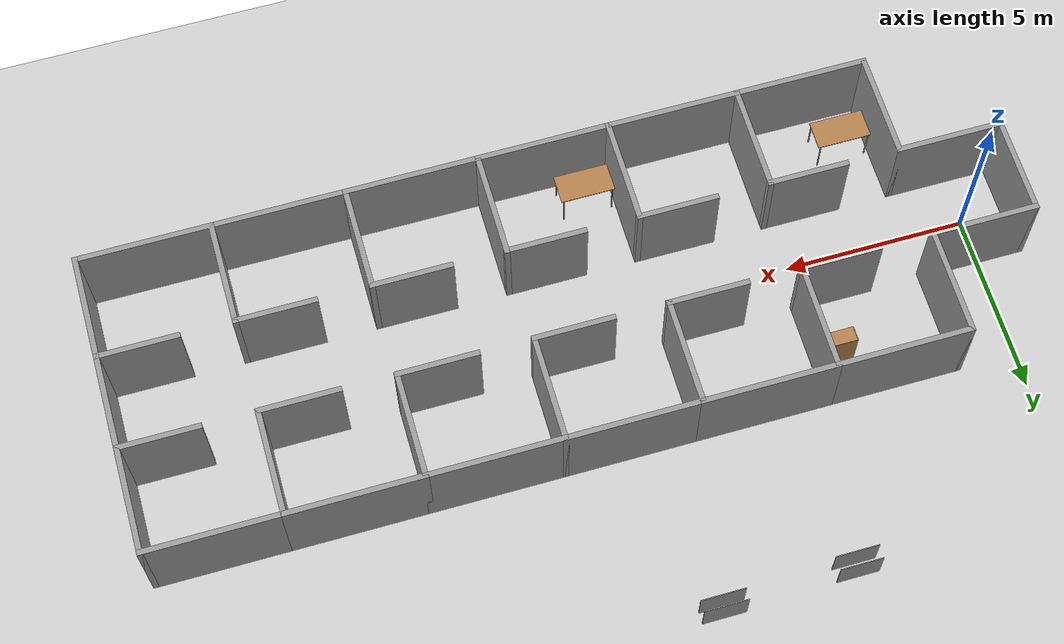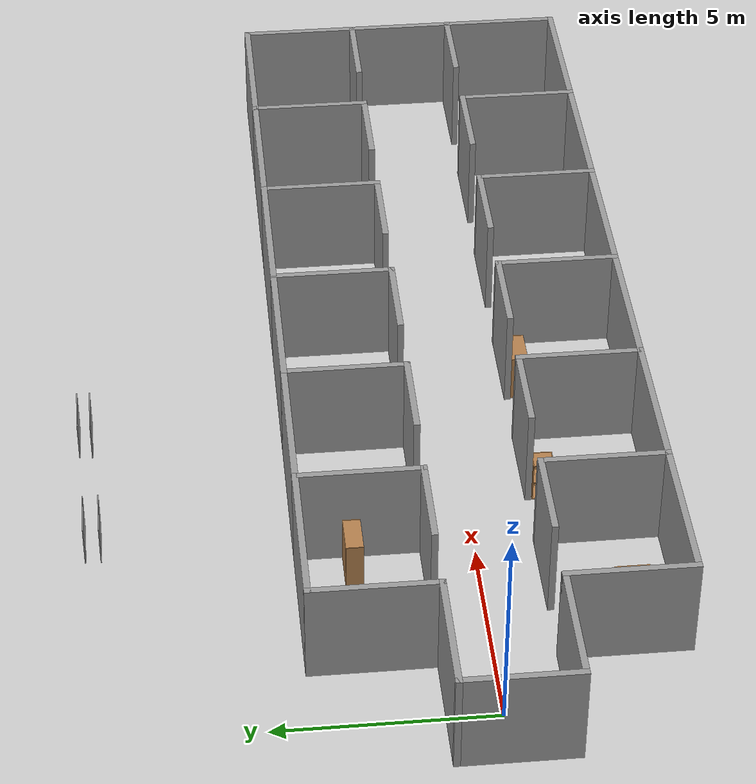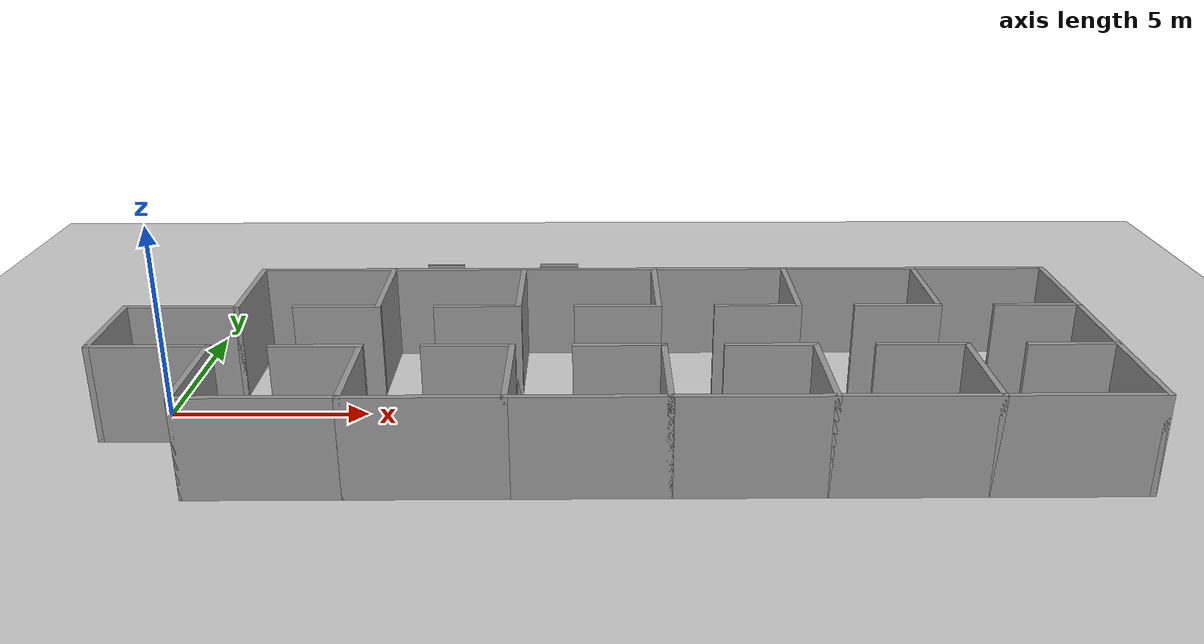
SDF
<sdf version="1.7">
 <world name="default">
  <model name="ground_plane">
   <static>1</static>
   <link name="link">
    <collision name="collision">
     <geometry><plane><normal>0 0 1</normal><size>100 100</size></plane></geometry>
     <surface><friction><ode><mu>100</mu><mu2>50</mu2></ode></friction></surface>
    </collision>
    <visual name="visual">
     <cast_shadows>0</cast_shadows>
     <geometry><plane><normal>0 0 1</normal><size>100 100</size></plane></geometry>
     <material>
      <script><uri>file://media/materials/scripts/gazebo.material</uri><name>Gazebo/Grey</name></script>
     </material>
    </visual>
   </link>
  </model>
  <model name="indoors_hotal">
   <pose>10.9758 -0.129699 0 0 -0 0</pose>
   <link name="Wall_0">
    <collision name="Wall_0_Collision">
     <geometry><box><size>2.75 0.15 2.5</size></box></geometry>
     <pose>0 0 1.25 0 -0 0</pose>
    </collision>
    <visual name="Wall_0_Visual">
     <pose>0 0 1.25 0 -0 0</pose>
     <geometry><box><size>2.75 0.15 2.5</size></box></geometry>
     <material>
      <script><uri>file://media/materials/scripts/gazebo.material</uri><name>Gazebo/Grey</name></script>
      <ambient>1 1 1 1</ambient>
     </material>
     <meta><layer>0</layer></meta>
    </visual>
    <pose>-12.225 -0 0 0 -0 -1.5708</pose>
   </link>
   <link name="Wall_10">
    <collision name="Wall_10_Collision">
     <geometry><box><size>3 0.15 2.5</size></box></geometry>
     <pose>0 0 1.25 0 -0 0</pose>
    </collision>
    <visual name="Wall_10_Visual">
     <pose>0 0 1.25 0 -0 0</pose>
     <geometry><box><size>3 0.15 2.5</size></box></geometry>
     <material>
      <script><uri>file://media/materials/scripts/gazebo.material</uri><name>Gazebo/Grey</name></script>
      <ambient>1 1 1 1</ambient>
     </material>
     <meta><layer>0</layer></meta>
    </visual>
    <pose>-9.375 2.725 0 0 -0 1.5708</pose>
   </link>
   <link name="Wall_11">
    <collision name="Wall_11_Collision">
     <geometry><box><size>3.75 0.15 2.5</size></box></geometry>
     <pose>0 0 1.25 0 -0 0</pose>
    </collision>
    <visual name="Wall_11_Visual">
     <pose>0 0 1.25 0 -0 0</pose>
     <geometry><box><size>3.75 0.15 2.5</size></box></geometry>
     <material>
      <script><uri>file://media/materials/scripts/gazebo.material</uri><name>Gazebo/Grey</name></script>
      <ambient>1 1 1 1</ambient>
     </material>
     <meta><layer>0</layer></meta>
    </visual>
    <pose>-7.575 4.15 0 0 -0 0</pose>
   </link>
   <link name="Wall_12">
    <collision name="Wall_12_Collision">
     <geometry><box><size>3 0.15 2.5</size></box></geometry>
     <pose>0 0 1.25 0 -0 0</pose>
    </collision>
    <visual name="Wall_12_Visual">
     <pose>0 0 1.25 0 -0 0</pose>
     <geometry><box><size>3 0.15 2.5</size></box></geometry>
     <material>
      <script><uri>file://media/materials/scripts/gazebo.material</uri><name>Gazebo/Grey</name></script>
      <ambient>1 1 1 1</ambient>
     </material>
     <meta><layer>0</layer></meta>
    </visual>
    <pose>-5.775 2.725 0 0 -0 -1.5708</pose>
   </link>
   <link name="Wall_13">
    <collision name="Wall_13_Collision">
     <geometry><box><size>2.25 0.15 2.5</size></box></geometry>
     <pose>0 0 1.25 0 -0 0</pose>
    </collision>
    <visual name="Wall_13_Visual">
     <pose>0 0 1.25 0 -0 0</pose>
     <geometry><box><size>2.25 0.15 2.5</size></box></geometry>
     <material>
      <script><uri>file://media/materials/scripts/gazebo.material</uri><name>Gazebo/Grey</name></script>
      <ambient>1 1 1 1</ambient>
     </material>
     <meta><layer>0</layer></meta>
    </visual>
    <pose>-6.825 1.3 0 0 -0 3.14159</pose>
   </link>
   <link name="Wall_15">
    <collision name="Wall_15_Collision">
     <geometry><box><size>3.75 0.15 2.5</size></box></geometry>
     <pose>0 0 1.25 0 -0 0</pose>
    </collision>
    <visual name="Wall_15_Visual">
     <pose>0 0 1.25 0 -0 0</pose>
     <geometry><box><size>3.75 0.15 2.5</size></box></geometry>
     <material>
      <script><uri>file://media/materials/scripts/gazebo.material</uri><name>Gazebo/Grey</name></script>
      <ambient>1 1 1 1</ambient>
     </material>
     <meta><layer>0</layer></meta>
    </visual>
    <pose>-3.975 4.15 0 0 -0 0</pose>
   </link>
   <link name="Wall_16">
    <collision name="Wall_16_Collision">
     <geometry><box><size>3 0.15 2.5</size></box></geometry>
     <pose>0 0 1.25 0 -0 0</pose>
    </collision>
    <visual name="Wall_16_Visual">
     <pose>0 0 1.25 0 -0 0</pose>
     <geometry><box><size>3 0.15 2.5</size></box></geometry>
     <material>
      <script><uri>file://media/materials/scripts/gazebo.material</uri><name>Gazebo/Grey</name></script>
      <ambient>1 1 1 1</ambient>
     </material>
     <meta><layer>0</layer></meta>
    </visual>
    <pose>-2.175 2.725 0 0 -0 -1.5708</pose>
   </link>
   <link name="Wall_17">
    <collision name="Wall_17_Collision">
     <geometry><box><size>2.25 0.15 2.5</size></box></geometry>
     <pose>0 0 1.25 0 -0 0</pose>
    </collision>
    <visual name="Wall_17_Visual">
     <pose>0 0 1.25 0 -0 0</pose>
     <geometry><box><size>2.25 0.15 2.5</size></box></geometry>
     <material>
      <script><uri>file://media/materials/scripts/gazebo.material</uri><name>Gazebo/Grey</name></script>
      <ambient>1 1 1 1</ambient>
     </material>
     <meta><layer>0</layer></meta>
    </visual>
    <pose>-3.225 1.3 0 0 -0 3.14159</pose>
   </link>
   <link name="Wall_19">
    <collision name="Wall_19_Collision">
     <geometry><box><size>3.75 0.15 2.5</size></box></geometry>
     <pose>0 0 1.25 0 -0 0</pose>
    </collision>
    <visual name="Wall_19_Visual">
     <pose>0 0 1.25 0 -0 0</pose>
     <geometry><box><size>3.75 0.15 2.5</size></box></geometry>
     <material>
      <script><uri>file://media/materials/scripts/gazebo.material</uri><name>Gazebo/Grey</name></script>
      <ambient>1 1 1 1</ambient>
     </material>
     <meta><layer>0</layer></meta>
    </visual>
    <pose>-3.975 -4.15 0 0 -0 0</pose>
   </link>
   <link name="Wall_2">
    <collision name="Wall_2_Collision">
     <geometry><box><size>3 0.15 2.5</size></box></geometry>
     <pose>0 0 1.25 0 -0 0</pose>
    </collision>
    <visual name="Wall_2_Visual">
     <pose>0 0 1.25 0 -0 0</pose>
     <geometry><box><size>3 0.15 2.5</size></box></geometry>
     <material>
      <script><uri>file://media/materials/scripts/gazebo.material</uri><name>Gazebo/Grey</name></script>
      <ambient>1 1 1 1</ambient>
     </material>
     <meta><layer>0</layer></meta>
    </visual>
    <pose>-10.8 -1.3 0 0 -0 0</pose>
   </link>
   <link name="Wall_20">
    <collision name="Wall_20_Collision">
     <geometry><box><size>3 0.15 2.5</size></box></geometry>
     <pose>0 0 1.25 0 -0 0</pose>
    </collision>
    <visual name="Wall_20_Visual">
     <pose>0 0 1.25 0 -0 0</pose>
     <geometry><box><size>3 0.15 2.5</size></box></geometry>
     <material>
      <script><uri>file://media/materials/scripts/gazebo.material</uri><name>Gazebo/Grey</name></script>
      <ambient>1 1 1 1</ambient>
     </material>
     <meta><layer>0</layer></meta>
    </visual>
    <pose>-2.175 -2.725 0 0 -0 1.5708</pose>
   </link>
   <link name="Wall_21">
    <collision name="Wall_21_Collision">
     <geometry><box><size>2.25 0.15 2.5</size></box></geometry>
     <pose>0 0 1.25 0 -0 0</pose>
    </collision>
    <visual name="Wall_21_Visual">
     <pose>0 0 1.25 0 -0 0</pose>
     <geometry><box><size>2.25 0.15 2.5</size></box></geometry>
     <material>
      <script><uri>file://media/materials/scripts/gazebo.material</uri><name>Gazebo/Grey</name></script>
      <ambient>1 1 1 1</ambient>
     </material>
     <meta><layer>0</layer></meta>
    </visual>
    <pose>-3.225 -1.3 0 0 -0 3.14159</pose>
   </link>
   <link name="Wall_23">
    <collision name="Wall_23_Collision">
     <geometry><box><size>3.75 0.15 2.5</size></box></geometry>
     <pose>0 0 1.25 0 -0 0</pose>
    </collision>
    <visual name="Wall_23_Visual">
     <pose>0 0 1.25 0 -0 0</pose>
     <geometry><box><size>3.75 0.15 2.5</size></box></geometry>
     <material>
      <script><uri>file://media/materials/scripts/gazebo.material</uri><name>Gazebo/Grey</name></script>
      <ambient>1 1 1 1</ambient>
     </material>
     <meta><layer>0</layer></meta>
    </visual>
    <pose>-0.375 4.15 0 0 -0 0</pose>
   </link>
   <link name="Wall_24">
    <collision name="Wall_24_Collision">
     <geometry><box><size>3 0.15 2.5</size></box></geometry>
     <pose>0 0 1.25 0 -0 0</pose>
    </collision>
    <visual name="Wall_24_Visual">
     <pose>0 0 1.25 0 -0 0</pose>
     <geometry><box><size>3 0.15 2.5</size></box></geometry>
     <material>
      <script><uri>file://media/materials/scripts/gazebo.material</uri><name>Gazebo/Grey</name></script>
      <ambient>1 1 1 1</ambient>
     </material>
     <meta><layer>0</layer></meta>
    </visual>
    <pose>1.425 2.725 0 0 -0 -1.5708</pose>
   </link>
   <link name="Wall_25">
    <collision name="Wall_25_Collision">
     <geometry><box><size>2.25 0.15 2.5</size></box></geometry>
     <pose>0 0 1.25 0 -0 0</pose>
    </collision>
    <visual name="Wall_25_Visual">
     <pose>0 0 1.25 0 -0 0</pose>
     <geometry><box><size>2.25 0.15 2.5</size></box></geometry>
     <material>
      <script><uri>file://media/materials/scripts/gazebo.material</uri><name>Gazebo/Grey</name></script>
      <ambient>1 1 1 1</ambient>
     </material>
     <meta><layer>0</layer></meta>
    </visual>
    <pose>0.375 1.3 0 0 -0 3.14159</pose>
   </link>
   <link name="Wall_27">
    <collision name="Wall_27_Collision">
     <geometry><box><size>3.75 0.15 2.5</size></box></geometry>
     <pose>0 0 1.25 0 -0 0</pose>
    </collision>
    <visual name="Wall_27_Visual">
     <pose>0 0 1.25 0 -0 0</pose>
     <geometry><box><size>3.75 0.15 2.5</size></box></geometry>
     <material>
      <script><uri>file://media/materials/scripts/gazebo.material</uri><name>Gazebo/Grey</name></script>
      <ambient>1 1 1 1</ambient>
     </material>
     <meta><layer>0</layer></meta>
    </visual>
    <pose>-0.375 -4.15 0 0 -0 0</pose>
   </link>
   <link name="Wall_28">
    <collision name="Wall_28_Collision">
     <geometry><box><size>3 0.15 2.5</size></box></geometry>
     <pose>0 0 1.25 0 -0 0</pose>
    </collision>
    <visual name="Wall_28_Visual">
     <pose>0 0 1.25 0 -0 0</pose>
     <geometry><box><size>3 0.15 2.5</size></box></geometry>
     <material>
      <script><uri>file://media/materials/scripts/gazebo.material</uri><name>Gazebo/Grey</name></script>
      <ambient>1 1 1 1</ambient>
     </material>
     <meta><layer>0</layer></meta>
    </visual>
    <pose>1.425 -2.725 0 0 -0 1.5708</pose>
   </link>
   <link name="Wall_29">
    <collision name="Wall_29_Collision">
     <geometry><box><size>2.25 0.15 2.5</size></box></geometry>
     <pose>0 0 1.25 0 -0 0</pose>
    </collision>
    <visual name="Wall_29_Visual">
     <pose>0 0 1.25 0 -0 0</pose>
     <geometry><box><size>2.25 0.15 2.5</size></box></geometry>
     <material>
      <script><uri>file://media/materials/scripts/gazebo.material</uri><name>Gazebo/Grey</name></script>
      <ambient>1 1 1 1</ambient>
     </material>
     <meta><layer>0</layer></meta>
    </visual>
    <pose>0.375 -1.3 0 0 -0 3.14159</pose>
   </link>
   <link name="Wall_31">
    <collision name="Wall_31_Collision">
     <geometry><box><size>3.75 0.15 2.5</size></box></geometry>
     <pose>0 0 1.25 0 -0 0</pose>
    </collision>
    <visual name="Wall_31_Visual">
     <pose>0 0 1.25 0 -0 0</pose>
     <geometry><box><size>3.75 0.15 2.5</size></box></geometry>
     <material>
      <script><uri>file://media/materials/scripts/gazebo.material</uri><name>Gazebo/Grey</name></script>
      <ambient>1 1 1 1</ambient>
     </material>
     <meta><layer>0</layer></meta>
    </visual>
    <pose>3.225 4.15 0 0 -0 0</pose>
   </link>
   <link name="Wall_32">
    <collision name="Wall_32_Collision">
     <geometry><box><size>3 0.15 2.5</size></box></geometry>
     <pose>0 0 1.25 0 -0 0</pose>
    </collision>
    <visual name="Wall_32_Visual">
     <pose>0 0 1.25 0 -0 0</pose>
     <geometry><box><size>3 0.15 2.5</size></box></geometry>
     <material>
      <script><uri>file://media/materials/scripts/gazebo.material</uri><name>Gazebo/Grey</name></script>
      <ambient>1 1 1 1</ambient>
     </material>
     <meta><layer>0</layer></meta>
    </visual>
    <pose>5.025 2.725 0 0 -0 -1.5708</pose>
   </link>
   <link name="Wall_33">
    <collision name="Wall_33_Collision">
     <geometry><box><size>2.25 0.15 2.5</size></box></geometry>
     <pose>0 0 1.25 0 -0 0</pose>
    </collision>
    <visual name="Wall_33_Visual">
     <pose>0 0 1.25 0 -0 0</pose>
     <geometry><box><size>2.25 0.15 2.5</size></box></geometry>
     <material>
      <script><uri>file://media/materials/scripts/gazebo.material</uri><name>Gazebo/Grey</name></script>
      <ambient>1 1 1 1</ambient>
     </material>
     <meta><layer>0</layer></meta>
    </visual>
    <pose>3.975 1.3 0 0 -0 3.14159</pose>
   </link>
   <link name="Wall_35">
    <collision name="Wall_35_Collision">
     <geometry><box><size>3.75 0.15 2.5</size></box></geometry>
     <pose>0 0 1.25 0 -0 0</pose>
    </collision>
    <visual name="Wall_35_Visual">
     <pose>0 0 1.25 0 -0 0</pose>
     <geometry><box><size>3.75 0.15 2.5</size></box></geometry>
     <material>
      <script><uri>file://media/materials/scripts/gazebo.material</uri><name>Gazebo/Grey</name></script>
      <ambient>1 1 1 1</ambient>
     </material>
     <meta><layer>0</layer></meta>
    </visual>
    <pose>6.825 4.15 0 0 -0 0</pose>
   </link>
   <link name="Wall_36">
    <collision name="Wall_36_Collision">
     <geometry><box><size>3 0.15 2.5</size></box></geometry>
     <pose>0 0 1.25 0 -0 0</pose>
    </collision>
    <visual name="Wall_36_Visual">
     <pose>0 0 1.25 0 -0 0</pose>
     <geometry><box><size>3 0.15 2.5</size></box></geometry>
     <material>
      <script><uri>file://media/materials/scripts/gazebo.material</uri><name>Gazebo/Grey</name></script>
      <ambient>1 1 1 1</ambient>
     </material>
     <meta><layer>0</layer></meta>
    </visual>
    <pose>8.625 2.725 0 0 -0 -1.5708</pose>
   </link>
   <link name="Wall_37">
    <collision name="Wall_37_Collision">
     <geometry><box><size>2.25 0.15 2.5</size></box></geometry>
     <pose>0 0 1.25 0 -0 0</pose>
    </collision>
    <visual name="Wall_37_Visual">
     <pose>0 0 1.25 0 -0 0</pose>
     <geometry><box><size>2.25 0.15 2.5</size></box></geometry>
     <material>
      <script><uri>file://media/materials/scripts/gazebo.material</uri><name>Gazebo/Grey</name></script>
      <ambient>1 1 1 1</ambient>
     </material>
     <meta><layer>0</layer></meta>
    </visual>
    <pose>7.575 1.3 0 0 -0 3.14159</pose>
   </link>
   <link name="Wall_39">
    <collision name="Wall_39_Collision">
     <geometry><box><size>3.75 0.15 2.5</size></box></geometry>
     <pose>0 0 1.25 0 -0 0</pose>
    </collision>
    <visual name="Wall_39_Visual">
     <pose>0 0 1.25 0 -0 0</pose>
     <geometry><box><size>3.75 0.15 2.5</size></box></geometry>
     <material>
      <script><uri>file://media/materials/scripts/gazebo.material</uri><name>Gazebo/Grey</name></script>
      <ambient>1 1 1 1</ambient>
     </material>
     <meta><layer>0</layer></meta>
    </visual>
    <pose>10.425 4.15 0 0 -0 0</pose>
   </link>
   <link name="Wall_4">
    <collision name="Wall_4_Collision">
     <geometry><box><size>3 0.15 2.5</size></box></geometry>
     <pose>0 0 1.25 0 -0 0</pose>
    </collision>
    <visual name="Wall_4_Visual">
     <pose>0 0 1.25 0 -0 0</pose>
     <geometry><box><size>3 0.15 2.5</size></box></geometry>
     <material>
      <script><uri>file://media/materials/scripts/gazebo.material</uri><name>Gazebo/Grey</name></script>
      <ambient>1 1 1 1</ambient>
     </material>
     <meta><layer>0</layer></meta>
    </visual>
    <pose>-9.375 -2.725 0 0 -0 -1.5708</pose>
   </link>
   <link name="Wall_40">
    <collision name="Wall_40_Collision">
     <geometry><box><size>3 0.15 2.5</size></box></geometry>
     <pose>0 0 1.25 0 -0 0</pose>
    </collision>
    <visual name="Wall_40_Visual">
     <pose>0 0 1.25 0 -0 0</pose>
     <geometry><box><size>3 0.15 2.5</size></box></geometry>
     <material>
      <script><uri>file://media/materials/scripts/gazebo.material</uri><name>Gazebo/Grey</name></script>
      <ambient>1 1 1 1</ambient>
     </material>
     <meta><layer>0</layer></meta>
    </visual>
    <pose>12.225 2.725 0 0 -0 -1.5708</pose>
   </link>
   <link name="Wall_41">
    <collision name="Wall_41_Collision">
     <geometry><box><size>2.25 0.15 2.5</size></box></geometry>
     <pose>0 0 1.25 0 -0 0</pose>
    </collision>
    <visual name="Wall_41_Visual">
     <pose>0 0 1.25 0 -0 0</pose>
     <geometry><box><size>2.25 0.15 2.5</size></box></geometry>
     <material>
      <script><uri>file://media/materials/scripts/gazebo.material</uri><name>Gazebo/Grey</name></script>
      <ambient>1 1 1 1</ambient>
     </material>
     <meta><layer>0</layer></meta>
    </visual>
    <pose>11.175 1.3 0 0 -0 3.14159</pose>
   </link>
   <link name="Wall_43">
    <collision name="Wall_43_Collision">
     <geometry><box><size>3.75 0.15 2.5</size></box></geometry>
     <pose>0 0 1.25 0 -0 0</pose>
    </collision>
    <visual name="Wall_43_Visual">
     <pose>0 0 1.25 0 -0 0</pose>
     <geometry><box><size>3.75 0.15 2.5</size></box></geometry>
     <material>
      <script><uri>file://media/materials/scripts/gazebo.material</uri><name>Gazebo/Grey</name></script>
      <ambient>1 1 1 1</ambient>
     </material>
     <meta><layer>0</layer></meta>
    </visual>
    <pose>3.225 -4.15 0 0 -0 0</pose>
   </link>
   <link name="Wall_44">
    <collision name="Wall_44_Collision">
     <geometry><box><size>3 0.15 2.5</size></box></geometry>
     <pose>0 0 1.25 0 -0 0</pose>
    </collision>
    <visual name="Wall_44_Visual">
     <pose>0 0 1.25 0 -0 0</pose>
     <geometry><box><size>3 0.15 2.5</size></box></geometry>
     <material>
      <script><uri>file://media/materials/scripts/gazebo.material</uri><name>Gazebo/Grey</name></script>
      <ambient>1 1 1 1</ambient>
     </material>
     <meta><layer>0</layer></meta>
    </visual>
    <pose>5.025 -2.725 0 0 -0 1.5708</pose>
   </link>
   <link name="Wall_45">
    <collision name="Wall_45_Collision">
     <geometry><box><size>2.25 0.15 2.5</size></box></geometry>
     <pose>0 0 1.25 0 -0 0</pose>
    </collision>
    <visual name="Wall_45_Visual">
     <pose>0 0 1.25 0 -0 0</pose>
     <geometry><box><size>2.25 0.15 2.5</size></box></geometry>
     <material>
      <script><uri>file://media/materials/scripts/gazebo.material</uri><name>Gazebo/Grey</name></script>
      <ambient>1 1 1 1</ambient>
     </material>
     <meta><layer>0</layer></meta>
    </visual>
    <pose>3.975 -1.3 0 0 -0 3.14159</pose>
   </link>
   <link name="Wall_47">
    <collision name="Wall_47_Collision">
     <geometry><box><size>3.75 0.15 2.5</size></box></geometry>
     <pose>0 0 1.25 0 -0 0</pose>
    </collision>
    <visual name="Wall_47_Visual">
     <pose>0 0 1.25 0 -0 0</pose>
     <geometry><box><size>3.75 0.15 2.5</size></box></geometry>
     <material>
      <script><uri>file://media/materials/scripts/gazebo.material</uri><name>Gazebo/Grey</name></script>
      <ambient>1 1 1 1</ambient>
     </material>
     <meta><layer>0</layer></meta>
    </visual>
    <pose>6.825 -4.15 0 0 -0 0</pose>
   </link>
   <link name="Wall_48">
    <collision name="Wall_48_Collision">
     <geometry><box><size>3 0.15 2.5</size></box></geometry>
     <pose>0 0 1.25 0 -0 0</pose>
    </collision>
    <visual name="Wall_48_Visual">
     <pose>0 0 1.25 0 -0 0</pose>
     <geometry><box><size>3 0.15 2.5</size></box></geometry>
     <material>
      <script><uri>file://media/materials/scripts/gazebo.material</uri><name>Gazebo/Grey</name></script>
      <ambient>1 1 1 1</ambient>
     </material>
     <meta><layer>0</layer></meta>
    </visual>
    <pose>8.625 -2.725 0 0 -0 1.5708</pose>
   </link>
   <link name="Wall_49">
    <collision name="Wall_49_Collision">
     <geometry><box><size>2.25 0.15 2.5</size></box></geometry>
     <pose>0 0 1.25 0 -0 0</pose>
    </collision>
    <visual name="Wall_49_Visual">
     <pose>0 0 1.25 0 -0 0</pose>
     <geometry><box><size>2.25 0.15 2.5</size></box></geometry>
     <material>
      <script><uri>file://media/materials/scripts/gazebo.material</uri><name>Gazebo/Grey</name></script>
      <ambient>1 1 1 1</ambient>
     </material>
     <meta><layer>0</layer></meta>
    </visual>
    <pose>7.575 -1.3 0 0 -0 3.14159</pose>
   </link>
   <link name="Wall_5">
    <collision name="Wall_5_Collision">
     <geometry><box><size>3.75 0.15 2.5</size></box></geometry>
     <pose>0 0 1.25 0 -0 0</pose>
    </collision>
    <visual name="Wall_5_Visual">
     <pose>0 0 1.25 0 -0 0</pose>
     <geometry><box><size>3.75 0.15 2.5</size></box></geometry>
     <material>
      <script><uri>file://media/materials/scripts/gazebo.material</uri><name>Gazebo/Grey</name></script>
      <ambient>1 1 1 1</ambient>
     </material>
     <meta><layer>0</layer></meta>
    </visual>
    <pose>-7.575 -4.15 0 0 -0 0</pose>
   </link>
   <link name="Wall_51">
    <collision name="Wall_51_Collision">
     <geometry><box><size>3.75 0.15 2.5</size></box></geometry>
     <pose>0 0 1.25 0 -0 0</pose>
    </collision>
    <visual name="Wall_51_Visual">
     <pose>0 0 1.25 0 -0 0</pose>
     <geometry><box><size>3.75 0.15 2.5</size></box></geometry>
     <material>
      <script><uri>file://media/materials/scripts/gazebo.material</uri><name>Gazebo/Grey</name></script>
      <ambient>1 1 1 1</ambient>
     </material>
     <meta><layer>0</layer></meta>
    </visual>
    <pose>10.425 -4.15 0 0 -0 0</pose>
   </link>
   <link name="Wall_52">
    <collision name="Wall_52_Collision">
     <geometry><box><size>3 0.15 2.5</size></box></geometry>
     <pose>0 0 1.25 0 -0 0</pose>
    </collision>
    <visual name="Wall_52_Visual">
     <pose>0 0 1.25 0 -0 0</pose>
     <geometry><box><size>3 0.15 2.5</size></box></geometry>
     <material>
      <script><uri>file://media/materials/scripts/gazebo.material</uri><name>Gazebo/Grey</name></script>
      <ambient>1 1 1 1</ambient>
     </material>
     <meta><layer>0</layer></meta>
    </visual>
    <pose>12.225 -2.725 0 0 -0 1.5708</pose>
   </link>
   <link name="Wall_53">
    <collision name="Wall_53_Collision">
     <geometry><box><size>2.25 0.15 2.5</size></box></geometry>
     <pose>0 0 1.25 0 -0 0</pose>
    </collision>
    <visual name="Wall_53_Visual">
     <pose>0 0 1.25 0 -0 0</pose>
     <geometry><box><size>2.25 0.15 2.5</size></box></geometry>
     <material>
      <script><uri>file://media/materials/scripts/gazebo.material</uri><name>Gazebo/Grey</name></script>
      <ambient>1 1 1 1</ambient>
     </material>
     <meta><layer>0</layer></meta>
    </visual>
    <pose>11.175 -1.3 0 0 -0 3.14159</pose>
   </link>
   <link name="Wall_55">
    <collision name="Wall_55_Collision">
     <geometry><box><size>2.75 0.15 2.5</size></box></geometry>
     <pose>0 0 1.25 0 -0 0</pose>
    </collision>
    <visual name="Wall_55_Visual">
     <pose>0 0 1.25 0 -0 0</pose>
     <geometry><box><size>2.75 0.15 2.5</size></box></geometry>
     <material>
      <script><uri>file://media/materials/scripts/gazebo.material</uri><name>Gazebo/Grey</name></script>
      <ambient>1 1 1 1</ambient>
     </material>
     <meta><layer>0</layer></meta>
    </visual>
    <pose>12.225 -0 0 0 -0 1.5708</pose>
   </link>
   <link name="Wall_6">
    <collision name="Wall_6_Collision">
     <geometry><box><size>3 0.15 2.5</size></box></geometry>
     <pose>0 0 1.25 0 -0 0</pose>
    </collision>
    <visual name="Wall_6_Visual">
     <pose>0 0 1.25 0 -0 0</pose>
     <geometry><box><size>3 0.15 2.5</size></box></geometry>
     <material>
      <script><uri>file://media/materials/scripts/gazebo.material</uri><name>Gazebo/Grey</name></script>
      <ambient>1 1 1 1</ambient>
     </material>
     <meta><layer>0</layer></meta>
    </visual>
    <pose>-5.775 -2.725 0 0 -0 1.5708</pose>
   </link>
   <link name="Wall_7">
    <collision name="Wall_7_Collision">
     <geometry><box><size>2.25 0.15 2.5</size></box></geometry>
     <pose>0 0 1.25 0 -0 0</pose>
    </collision>
    <visual name="Wall_7_Visual">
     <pose>0 0 1.25 0 -0 0</pose>
     <geometry><box><size>2.25 0.15 2.5</size></box></geometry>
     <material>
      <script><uri>file://media/materials/scripts/gazebo.material</uri><name>Gazebo/Grey</name></script>
      <ambient>1 1 1 1</ambient>
     </material>
     <meta><layer>0</layer></meta>
    </visual>
    <pose>-6.825 -1.3 0 0 -0 3.14159</pose>
   </link>
   <link name="Wall_9">
    <collision name="Wall_9_Collision">
     <geometry><box><size>3 0.15 2.5</size></box></geometry>
     <pose>0 0 1.25 0 -0 0</pose>
    </collision>
    <visual name="Wall_9_Visual">
     <pose>0 0 1.25 0 -0 0</pose>
     <geometry><box><size>3 0.15 2.5</size></box></geometry>
     <material>
      <script><uri>file://media/materials/scripts/gazebo.material</uri><name>Gazebo/Grey</name></script>
      <ambient>1 1 1 1</ambient>
     </material>
     <meta><layer>0</layer></meta>
    </visual>
    <pose>-10.8 1.3 0 0 -0 0</pose>
   </link>
   <static>1</static>
  </model>
  <model name="unit_box_clone">
   <pose>9.62629 8.55449 0.5 -1.5e-05 -0 -8.5e-05</pose>
   <link name="link">
    <inertial>
     <mass>1</mass>
     <inertia>
      <ixx>0.166667</ixx>
      <ixy>0</ixy>
      <ixz>0</ixz>
      <iyy>0.166667</iyy>
      <iyz>0</iyz>
      <izz>0.166667</izz>
     </inertia>
    </inertial>
    <collision name="collision"><geometry><box><size>1.20063 0.023727 1</size></box></geometry></collision>
    <visual name="visual">
     <geometry><box><size>1.20063 0.023727 1</size></box></geometry>
     <material>
      <script><name>Gazebo/Grey</name><uri>file://media/materials/scripts/gazebo.material</uri></script>
     </material>
    </visual>
   </link>
  </model>
  <model name="unit_box_clone_0">
   <pose>6.04632 8.76012 0.499997 5e-06 6e-06 -5e-06</pose>
   <link name="link">
    <inertial>
     <mass>1</mass>
     <inertia>
      <ixx>0.166667</ixx>
      <ixy>0</ixy>
      <ixz>0</ixz>
      <iyy>0.166667</iyy>
      <iyz>0</iyz>
      <izz>0.166667</izz>
     </inertia>
    </inertial>
    <collision name="collision"><geometry><box><size>1.14619 0.023727 1</size></box></geometry></collision>
    <visual name="visual">
     <geometry><box><size>1.14619 0.023727 1</size></box></geometry>
     <material>
      <script><name>Gazebo/Grey</name><uri>file://media/materials/scripts/gazebo.material</uri></script>
     </material>
    </visual>
   </link>
  </model>
  <model name="unit_box_clone_1">
   <pose>6.04149 8.40508 0.499997 -1e-06 -6e-06 1e-06</pose>
   <link name="link">
    <inertial>
     <mass>1</mass>
     <inertia>
      <ixx>0.166667</ixx>
      <ixy>0</ixy>
      <ixz>0</ixz>
      <iyy>0.166667</iyy>
      <iyz>0</iyz>
      <izz>0.166667</izz>
     </inertia>
    </inertial>
    <collision name="collision"><geometry><box><size>1.16867 0.023727 1</size></box></geometry></collision>
    <visual name="visual">
     <geometry><box><size>1.16867 0.023727 1</size></box></geometry>
     <material>
      <script><name>Gazebo/Grey</name><uri>file://media/materials/scripts/gazebo.material</uri></script>
     </material>
    </visual>
   </link>
  </model>
  <model name="unit_box_clone_2">
   <pose>9.6346 8.85163 0.499996 5e-06 -7e-06 0</pose>
   <link name="link">
    <inertial>
     <mass>1</mass>
     <inertia>
      <ixx>0.166667</ixx>
      <ixy>0</ixy>
      <ixz>0</ixz>
      <iyy>0.166667</iyy>
      <iyz>0</iyz>
      <izz>0.166667</izz>
     </inertia>
    </inertial>
    <collision name="collision"><geometry><box><size>1.18242 0.023727 1</size></box></geometry></collision>
    <visual name="visual">
     <geometry><box><size>1.18242 0.023727 1</size></box></geometry>
     <material>
      <script><name>Gazebo/Grey</name><uri>file://media/materials/scripts/gazebo.material</uri></script>
     </material>
    </visual>
   </link>
  </model>
  <model name="bookshelf_2">
   <static>1</static>
   <link name="link">
    <inertial><mass>1</mass></inertial>
    <collision name="back">
     <pose>0 0.005 0.6 0 -0 0</pose>
     <geometry><box><size>0.9 0.01 1.2</size></box></geometry>
    </collision>
    <visual name="visual1">
     <pose>0 0.005 0.6 0 -0 0</pose>
     <geometry><box><size>0.9 0.01 1.2</size></box></geometry>
     <material>
      <script><uri>file://media/materials/scripts/gazebo.material</uri><name>Gazebo/Wood</name></script>
     </material>
    </visual>
    <collision name="left_side">
     <pose>0.45 -0.195 0.6 0 -0 0</pose>
     <geometry><box><size>0.02 0.4 1.2</size></box></geometry>
    </collision>
    <visual name="visual2">
     <pose>0.45 -0.195 0.6 0 -0 0</pose>
     <geometry><box><size>0.02 0.4 1.2</size></box></geometry>
     <material>
      <script><uri>file://media/materials/scripts/gazebo.material</uri><name>Gazebo/Wood</name></script>
     </material>
    </visual>
    <collision name="right_side">
     <pose>-0.45 -0.195 0.6 0 -0 0</pose>
     <geometry><box><size>0.02 0.4 1.2</size></box></geometry>
    </collision>
    <visual name="visual3">
     <pose>-0.45 -0.195 0.6 0 -0 0</pose>
     <geometry><box><size>0.02 0.4 1.2</size></box></geometry>
     <material>
      <script><uri>file://media/materials/scripts/gazebo.material</uri><name>Gazebo/Wood</name></script>
     </material>
    </visual>
    <collision name="bottom">
     <pose>0 -0.195 0.03 0 -0 0</pose>
     <geometry><box><size>0.88 0.4 0.06</size></box></geometry>
    </collision>
    <visual name="visual4">
     <pose>0 -0.195 0.03 0 -0 0</pose>
     <geometry><box><size>0.88 0.4 0.06</size></box></geometry>
     <material>
      <script><uri>file://media/materials/scripts/gazebo.material</uri><name>Gazebo/Wood</name></script>
     </material>
    </visual>
    <collision name="top">
     <pose>0 -0.195 1.19 0 -0 0</pose>
     <geometry><box><size>0.88 0.4 0.02</size></box></geometry>
    </collision>
    <visual name="visual5">
     <pose>0 -0.195 1.19 0 -0 0</pose>
     <geometry><box><size>0.88 0.4 0.02</size></box></geometry>
     <material>
      <script><uri>file://media/materials/scripts/gazebo.material</uri><name>Gazebo/Wood</name></script>
     </material>
    </visual>
    <collision name="low_shelf">
     <pose>0 -0.195 0.43 0 -0 0</pose>
     <geometry><box><size>0.88 0.4 0.02</size></box></geometry>
    </collision>
    <visual name="visual6">
     <pose>0 -0.195 0.43 0 -0 0</pose>
     <geometry><box><size>0.88 0.4 0.02</size></box></geometry>
     <material>
      <script><uri>file://media/materials/scripts/gazebo.material</uri><name>Gazebo/Wood</name></script>
     </material>
    </visual>
    <collision name="high_shelf">
     <pose>0 -0.195 0.8 0 -0 0</pose>
     <geometry><box><size>0.88 0.4 0.02</size></box></geometry>
    </collision>
    <visual name="visual7">
     <pose>0 -0.195 0.8 0 -0 0</pose>
     <geometry><box><size>0.88 0.4 0.02</size></box></geometry>
     <material>
      <script><uri>file://media/materials/scripts/gazebo.material</uri><name>Gazebo/Wood</name></script>
     </material>
    </visual>
   </link>
   <pose>4.60447 2.99102 0 0 -0 0</pose>
  </model>
  <model name="cabinet_3">
   <static>1</static>
   <link name="cabinet_bottom_plate">
    <inertial>
     <pose>0 0 -1 0 -0 0</pose>
     <inertia><ixx>2.05</ixx><ixy>0</ixy><ixz>0</ixz><iyy>2.05</iyy><iyz>0</iyz><izz>2.05</izz></inertia>
     <mass>25</mass>
    </inertial>
    <collision name="cabinet_bottom_plate_geom">
     <pose>0 0 0.01 0 -0 0</pose>
     <geometry><box><size>0.45 0.45 0.02</size></box></geometry>
    </collision>
    <visual name="cabinet_bottom_plate_geom_visual">
     <pose>0 0 0.01 0 -0 0</pose>
     <geometry><box><size>0.45 0.45 0.02</size></box></geometry>
     <material>
      <script><uri>file://media/materials/scripts/gazebo.material</uri><name>Gazebo/Wood</name></script>
     </material>
    </visual>
    <collision name="cabinet_bottom_plate_geom_cabinet_back_plate">
     <pose>0.235 0 0.51 0 -0 0</pose>
     <geometry><box><size>0.02 0.45 1.02</size></box></geometry>
    </collision>
    <visual name="cabinet_bottom_plate_geom_cabinet_back_plate_visual">
     <pose>0.235 0 0.51 0 -0 0</pose>
     <geometry><box><size>0.02 0.45 1.02</size></box></geometry>
     <material>
      <script><uri>file://media/materials/scripts/gazebo.material</uri><name>Gazebo/Wood</name></script>
     </material>
    </visual>
    <collision name="cabinet_bottom_plate_geom_cabinet_left_plate">
     <pose>0 0.235 0.51 0 -0 0</pose>
     <geometry><box><size>0.45 0.02 1.02</size></box></geometry>
    </collision>
    <visual name="cabinet_bottom_plate_geom_cabinet_left_plate_visual">
     <pose>0 0.235 0.51 0 -0 0</pose>
     <geometry><box><size>0.45 0.02 1.02</size></box></geometry>
     <material>
      <script><uri>file://media/materials/scripts/gazebo.material</uri><name>Gazebo/Wood</name></script>
     </material>
    </visual>
    <collision name="cabinet_bottom_plate_geom_cabinet_middle_plate">
     <pose>0 0 0.51 0 -0 0</pose>
     <geometry><box><size>0.45 0.45 0.02</size></box></geometry>
    </collision>
    <visual name="cabinet_bottom_plate_geom_cabinet_middle_plate_visual">
     <pose>0 0 0.51 0 -0 0</pose>
     <geometry><box><size>0.45 0.45 0.02</size></box></geometry>
     <material>
      <script><uri>file://media/materials/scripts/gazebo.material</uri><name>Gazebo/Wood</name></script>
     </material>
    </visual>
    <collision name="cabinet_bottom_plate_geom_cabinet_right_plate">
     <pose>0 -0.235 0.51 0 -0 0</pose>
     <geometry><box><size>0.45 0.02 1.02</size></box></geometry>
    </collision>
    <visual name="cabinet_bottom_plate_geom_cabinet_right_plate_visual">
     <pose>0 -0.235 0.51 0 -0 0</pose>
     <geometry><box><size>0.45 0.02 1.02</size></box></geometry>
     <material>
      <script><uri>file://media/materials/scripts/gazebo.material</uri><name>Gazebo/Wood</name></script>
     </material>
    </visual>
    <collision name="cabinet_bottom_plate_geom_cabinet_top_plate">
     <pose>0 0 1.01 0 -0 0</pose>
     <geometry><box><size>0.45 0.45 0.02</size></box></geometry>
    </collision>
    <visual name="cabinet_bottom_plate_geom_cabinet_top_plate_visual">
     <pose>0 0 1.01 0 -0 0</pose>
     <geometry><box><size>0.45 0.45 0.02</size></box></geometry>
     <material>
      <script><uri>file://media/materials/scripts/gazebo.material</uri><name>Gazebo/Wood</name></script>
     </material>
    </visual>
   </link>
   <pose>6.86346 -1.76694 0 0 -0 0</pose>
  </model>
  <model name="bookshelf_3">
   <static>1</static>
   <link name="link">
    <inertial><mass>1</mass></inertial>
    <collision name="back">
     <pose>0 0.005 0.6 0 -0 0</pose>
     <geometry><box><size>0.9 0.01 1.2</size></box></geometry>
    </collision>
    <visual name="visual1">
     <pose>0 0.005 0.6 0 -0 0</pose>
     <geometry><box><size>0.9 0.01 1.2</size></box></geometry>
     <material>
      <script><uri>file://media/materials/scripts/gazebo.material</uri><name>Gazebo/Wood</name></script>
     </material>
    </visual>
    <collision name="left_side">
     <pose>0.45 -0.195 0.6 0 -0 0</pose>
     <geometry><box><size>0.02 0.4 1.2</size></box></geometry>
    </collision>
    <visual name="visual2">
     <pose>0.45 -0.195 0.6 0 -0 0</pose>
     <geometry><box><size>0.02 0.4 1.2</size></box></geometry>
     <material>
      <script><uri>file://media/materials/scripts/gazebo.material</uri><name>Gazebo/Wood</name></script>
     </material>
    </visual>
    <collision name="right_side">
     <pose>-0.45 -0.195 0.6 0 -0 0</pose>
     <geometry><box><size>0.02 0.4 1.2</size></box></geometry>
    </collision>
    <visual name="visual3">
     <pose>-0.45 -0.195 0.6 0 -0 0</pose>
     <geometry><box><size>0.02 0.4 1.2</size></box></geometry>
     <material>
      <script><uri>file://media/materials/scripts/gazebo.material</uri><name>Gazebo/Wood</name></script>
     </material>
    </visual>
    <collision name="bottom">
     <pose>0 -0.195 0.03 0 -0 0</pose>
     <geometry><box><size>0.88 0.4 0.06</size></box></geometry>
    </collision>
    <visual name="visual4">
     <pose>0 -0.195 0.03 0 -0 0</pose>
     <geometry><box><size>0.88 0.4 0.06</size></box></geometry>
     <material>
      <script><uri>file://media/materials/scripts/gazebo.material</uri><name>Gazebo/Wood</name></script>
     </material>
    </visual>
    <collision name="top">
     <pose>0 -0.195 1.19 0 -0 0</pose>
     <geometry><box><size>0.88 0.4 0.02</size></box></geometry>
    </collision>
    <visual name="visual5">
     <pose>0 -0.195 1.19 0 -0 0</pose>
     <geometry><box><size>0.88 0.4 0.02</size></box></geometry>
     <material>
      <script><uri>file://media/materials/scripts/gazebo.material</uri><name>Gazebo/Wood</name></script>
     </material>
    </visual>
    <collision name="low_shelf">
     <pose>0 -0.195 0.43 0 -0 0</pose>
     <geometry><box><size>0.88 0.4 0.02</size></box></geometry>
    </collision>
    <visual name="visual6">
     <pose>0 -0.195 0.43 0 -0 0</pose>
     <geometry><box><size>0.88 0.4 0.02</size></box></geometry>
     <material>
      <script><uri>file://media/materials/scripts/gazebo.material</uri><name>Gazebo/Wood</name></script>
     </material>
    </visual>
    <collision name="high_shelf">
     <pose>0 -0.195 0.8 0 -0 0</pose>
     <geometry><box><size>0.88 0.4 0.02</size></box></geometry>
    </collision>
    <visual name="visual7">
     <pose>0 -0.195 0.8 0 -0 0</pose>
     <geometry><box><size>0.88 0.4 0.02</size></box></geometry>
     <material>
      <script><uri>file://media/materials/scripts/gazebo.material</uri><name>Gazebo/Wood</name></script>
     </material>
    </visual>
   </link>
   <pose>10.7258 -1.51261 0 0 -0 0</pose>
  </model>
  <model name="table_0">
   <static>1</static>
   <link name="link">
    <collision name="surface">
     <pose>0 0 1 0 -0 0</pose>
     <geometry><box><size>1.5 0.8 0.03</size></box></geometry>
     <surface><friction><ode><mu>0.6</mu><mu2>0.6</mu2></ode></friction></surface>
    </collision>
    <visual name="visual1">
     <pose>0 0 1 0 -0 0</pose>
     <geometry><box><size>1.5 0.8 0.03</size></box></geometry>
     <material>
      <script><uri>file://media/materials/scripts/gazebo.material</uri><name>Gazebo/Wood</name></script>
     </material>
    </visual>
    <collision name="front_left_leg">
     <pose>0.68 0.38 0.5 0 -0 0</pose>
     <geometry><cylinder><radius>0.02</radius><length>1</length></cylinder></geometry>
    </collision>
    <visual name="front_left_leg">
     <pose>0.68 0.38 0.5 0 -0 0</pose>
     <geometry><cylinder><radius>0.02</radius><length>1</length></cylinder></geometry>
     <material>
      <script><uri>file://media/materials/scripts/gazebo.material</uri><name>Gazebo/Grey</name></script>
     </material>
    </visual>
    <collision name="front_right_leg">
     <pose>0.68 -0.38 0.5 0 -0 0</pose>
     <geometry><cylinder><radius>0.02</radius><length>1</length></cylinder></geometry>
    </collision>
    <visual name="front_right_leg">
     <pose>0.68 -0.38 0.5 0 -0 0</pose>
     <geometry><cylinder><radius>0.02</radius><length>1</length></cylinder></geometry>
     <material>
      <script><uri>file://media/materials/scripts/gazebo.material</uri><name>Gazebo/Grey</name></script>
     </material>
    </visual>
    <collision name="back_right_leg">
     <pose>-0.68 -0.38 0.5 0 -0 0</pose>
     <geometry><cylinder><radius>0.02</radius><length>1</length></cylinder></geometry>
    </collision>
    <visual name="back_right_leg">
     <pose>-0.68 -0.38 0.5 0 -0 0</pose>
     <geometry><cylinder><radius>0.02</radius><length>1</length></cylinder></geometry>
     <material>
      <script><uri>file://media/materials/scripts/gazebo.material</uri><name>Gazebo/Grey</name></script>
     </material>
    </visual>
    <collision name="back_left_leg">
     <pose>-0.68 0.38 0.5 0 -0 0</pose>
     <geometry><cylinder><radius>0.02</radius><length>1</length></cylinder></geometry>
    </collision>
    <visual name="back_left_leg">
     <pose>-0.68 0.38 0.5 0 -0 0</pose>
     <geometry><cylinder><radius>0.02</radius><length>1</length></cylinder></geometry>
     <material>
      <script><uri>file://media/materials/scripts/gazebo.material</uri><name>Gazebo/Grey</name></script>
     </material>
    </visual>
   </link>
   <pose>9.66794 -3.55031 0 0 -0 0</pose>
  </model>
  <model name="table_1">
   <static>1</static>
   <link name="link">
    <collision name="surface">
     <pose>0 0 1 0 -0 0</pose>
     <geometry><box><size>1.5 0.8 0.03</size></box></geometry>
     <surface><friction><ode><mu>0.6</mu><mu2>0.6</mu2></ode></friction></surface>
    </collision>
    <visual name="visual1">
     <pose>0 0 1 0 -0 0</pose>
     <geometry><box><size>1.5 0.8 0.03</size></box></geometry>
     <material>
      <script><uri>file://media/materials/scripts/gazebo.material</uri><name>Gazebo/Wood</name></script>
     </material>
    </visual>
    <collision name="front_left_leg">
     <pose>0.68 0.38 0.5 0 -0 0</pose>
     <geometry><cylinder><radius>0.02</radius><length>1</length></cylinder></geometry>
    </collision>
    <visual name="front_left_leg">
     <pose>0.68 0.38 0.5 0 -0 0</pose>
     <geometry><cylinder><radius>0.02</radius><length>1</length></cylinder></geometry>
     <material>
      <script><uri>file://media/materials/scripts/gazebo.material</uri><name>Gazebo/Grey</name></script>
     </material>
    </visual>
    <collision name="front_right_leg">
     <pose>0.68 -0.38 0.5 0 -0 0</pose>
     <geometry><cylinder><radius>0.02</radius><length>1</length></cylinder></geometry>
    </collision>
    <visual name="front_right_leg">
     <pose>0.68 -0.38 0.5 0 -0 0</pose>
     <geometry><cylinder><radius>0.02</radius><length>1</length></cylinder></geometry>
     <material>
      <script><uri>file://media/materials/scripts/gazebo.material</uri><name>Gazebo/Grey</name></script>
     </material>
    </visual>
    <collision name="back_right_leg">
     <pose>-0.68 -0.38 0.5 0 -0 0</pose>
     <geometry><cylinder><radius>0.02</radius><length>1</length></cylinder></geometry>
    </collision>
    <visual name="back_right_leg">
     <pose>-0.68 -0.38 0.5 0 -0 0</pose>
     <geometry><cylinder><radius>0.02</radius><length>1</length></cylinder></geometry>
     <material>
      <script><uri>file://media/materials/scripts/gazebo.material</uri><name>Gazebo/Grey</name></script>
     </material>
    </visual>
    <collision name="back_left_leg">
     <pose>-0.68 0.38 0.5 0 -0 0</pose>
     <geometry><cylinder><radius>0.02</radius><length>1</length></cylinder></geometry>
    </collision>
    <visual name="back_left_leg">
     <pose>-0.68 0.38 0.5 0 -0 0</pose>
     <geometry><cylinder><radius>0.02</radius><length>1</length></cylinder></geometry>
     <material>
      <script><uri>file://media/materials/scripts/gazebo.material</uri><name>Gazebo/Grey</name></script>
     </material>
    </visual>
   </link>
   <pose>2.46733 -3.21706 0 0 -0 0</pose>
  </model>
 </world>
</sdf>
